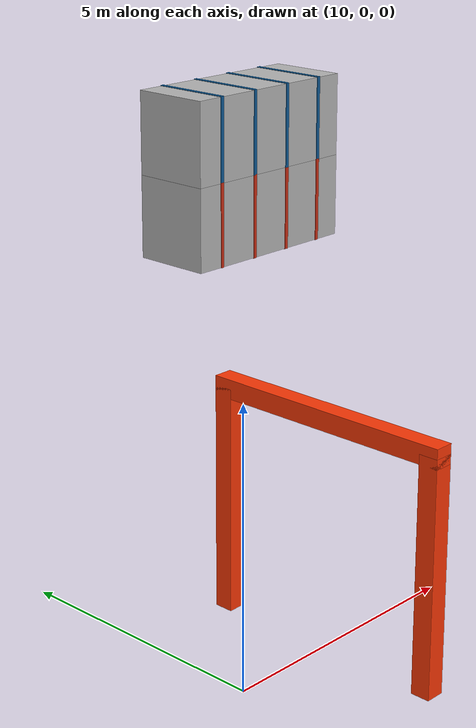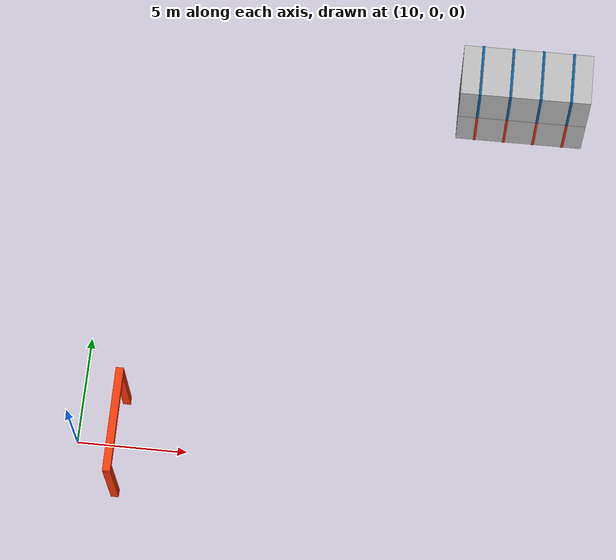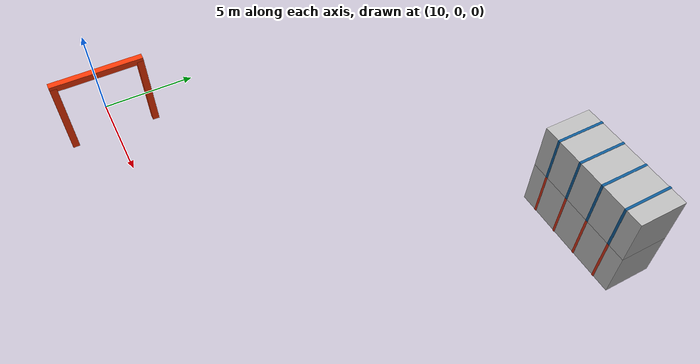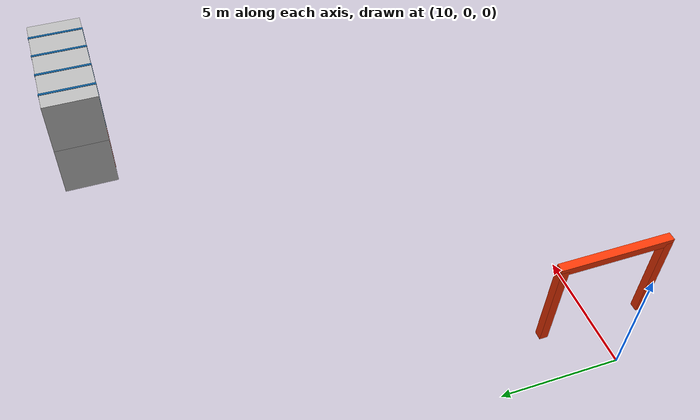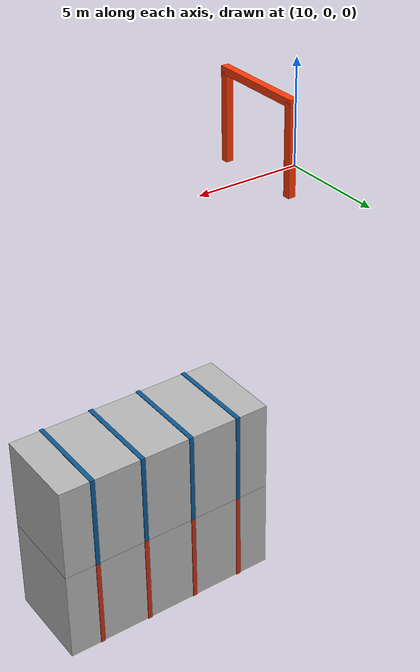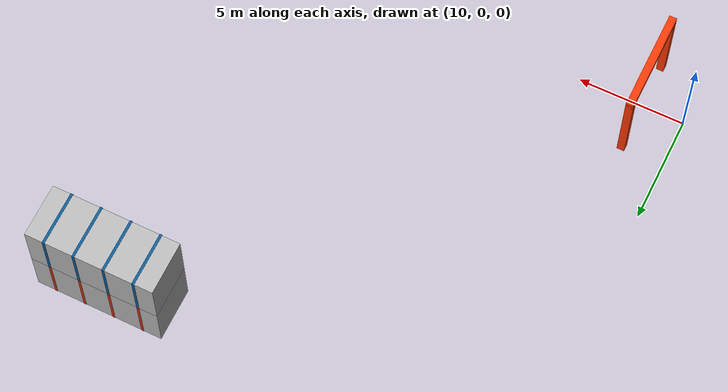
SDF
<sdf version="1.6">
 <world name="uav_complex_120m">
  <model name="gate_12m">
   <static>true</static>
   <link name="left_post">
    <pose>0 2.2 2.1 0 0 0</pose>
    <collision name="collision">
     <geometry><box><size>0.35 0.35 4.2</size></box></geometry>
     <laser_retro>100</laser_retro>
     <surface><friction><ode><mu>1.0</mu><mu2>1.0</mu2></ode></friction></surface>
    </collision>
    <visual name="visual">
     <geometry><box><size>0.35 0.35 4.2</size></box></geometry>
     <material>
      <ambient>1 0.22 0.025 1</ambient>
      <diffuse>1 0.22 0.025 1</diffuse>
      <specular>0.08 0.08 0.08 1</specular>
     </material>
    </visual>
   </link>
   <link name="right_post">
    <pose>0 -2.2 2.1 0 0 0</pose>
    <collision name="collision">
     <geometry><box><size>0.35 0.35 4.2</size></box></geometry>
     <laser_retro>100</laser_retro>
     <surface><friction><ode><mu>1.0</mu><mu2>1.0</mu2></ode></friction></surface>
    </collision>
    <visual name="visual">
     <geometry><box><size>0.35 0.35 4.2</size></box></geometry>
     <material>
      <ambient>1 0.22 0.025 1</ambient>
      <diffuse>1 0.22 0.025 1</diffuse>
      <specular>0.08 0.08 0.08 1</specular>
     </material>
    </visual>
   </link>
   <link name="top_beam">
    <pose>0 0 4.2 0 0 0</pose>
    <collision name="collision">
     <geometry><box><size>0.35 4.75 0.35</size></box></geometry>
     <laser_retro>100</laser_retro>
     <surface><friction><ode><mu>1.0</mu><mu2>1.0</mu2></ode></friction></surface>
    </collision>
    <visual name="visual">
     <geometry><box><size>0.35 4.75 0.35</size></box></geometry>
     <material>
      <ambient>1 0.22 0.025 1</ambient>
      <diffuse>1 0.22 0.025 1</diffuse>
      <specular>0.08 0.08 0.08 1</specular>
     </material>
    </visual>
   </link>
   <pose>12 0 0 0 0 0</pose>
  </model>
  <model name="container_0">
   <static>true</static>
   <link name="container">
    <pose>0 0 1.275 0 0 0</pose>
    <collision name="collision">
     <geometry><box><size>6 2.45 2.55</size></box></geometry>
     <laser_retro>100</laser_retro>
     <surface><friction><ode><mu>1.0</mu><mu2>1.0</mu2></ode></friction></surface>
    </collision>
    <visual name="visual">
     <geometry><box><size>6 2.45 2.55</size></box></geometry>
     <material>
      <script>
       <uri>model://uav_complex_scene/materials/scripts</uri>
       <uri>model://uav_complex_scene/materials/textures</uri>
       <name>UAVComplex/RustedSteel</name>
      </script>
     </material>
    </visual>
   </link>
   <link name="rib_-2.1">
    <pose>-2.1 0 1.28 0 0 0</pose>
    <visual name="visual">
     <geometry><box><size>0.12 2.49 2.58</size></box></geometry>
     <material>
      <ambient>0.8 0.18 0.08 1</ambient>
      <diffuse>0.8 0.18 0.08 1</diffuse>
      <specular>0.08 0.08 0.08 1</specular>
     </material>
    </visual>
   </link>
   <link name="rib_-0.7">
    <pose>-0.7 0 1.28 0 0 0</pose>
    <visual name="visual">
     <geometry><box><size>0.12 2.49 2.58</size></box></geometry>
     <material>
      <ambient>0.8 0.18 0.08 1</ambient>
      <diffuse>0.8 0.18 0.08 1</diffuse>
      <specular>0.08 0.08 0.08 1</specular>
     </material>
    </visual>
   </link>
   <link name="rib_+0.7">
    <pose>0.7 0 1.28 0 0 0</pose>
    <visual name="visual">
     <geometry><box><size>0.12 2.49 2.58</size></box></geometry>
     <material>
      <ambient>0.8 0.18 0.08 1</ambient>
      <diffuse>0.8 0.18 0.08 1</diffuse>
      <specular>0.08 0.08 0.08 1</specular>
     </material>
    </visual>
   </link>
   <link name="rib_+2.1">
    <pose>2.1 0 1.28 0 0 0</pose>
    <visual name="visual">
     <geometry><box><size>0.12 2.49 2.58</size></box></geometry>
     <material>
      <ambient>0.8 0.18 0.08 1</ambient>
      <diffuse>0.8 0.18 0.08 1</diffuse>
      <specular>0.08 0.08 0.08 1</specular>
     </material>
    </visual>
   </link>
   <pose>29 18 0 0 0 0</pose>
  </model>
  <model name="container_9">
   <static>true</static>
   <link name="container">
    <pose>0 0 1.275 0 0 0</pose>
    <collision name="collision">
     <geometry><box><size>6 2.45 2.55</size></box></geometry>
     <laser_retro>100</laser_retro>
     <surface><friction><ode><mu>1.0</mu><mu2>1.0</mu2></ode></friction></surface>
    </collision>
    <visual name="visual">
     <geometry><box><size>6 2.45 2.55</size></box></geometry>
     <material>
      <script>
       <uri>model://uav_complex_scene/materials/scripts</uri>
       <uri>model://uav_complex_scene/materials/textures</uri>
       <name>UAVComplex/RustedSteel</name>
      </script>
     </material>
    </visual>
   </link>
   <link name="rib_-2.1">
    <pose>-2.1 0 1.28 0 0 0</pose>
    <visual name="visual">
     <geometry><box><size>0.12 2.49 2.58</size></box></geometry>
     <material>
      <ambient>0.05 0.35 0.58 1</ambient>
      <diffuse>0.05 0.35 0.58 1</diffuse>
      <specular>0.08 0.08 0.08 1</specular>
     </material>
    </visual>
   </link>
   <link name="rib_-0.7">
    <pose>-0.7 0 1.28 0 0 0</pose>
    <visual name="visual">
     <geometry><box><size>0.12 2.49 2.58</size></box></geometry>
     <material>
      <ambient>0.05 0.35 0.58 1</ambient>
      <diffuse>0.05 0.35 0.58 1</diffuse>
      <specular>0.08 0.08 0.08 1</specular>
     </material>
    </visual>
   </link>
   <link name="rib_+0.7">
    <pose>0.7 0 1.28 0 0 0</pose>
    <visual name="visual">
     <geometry><box><size>0.12 2.49 2.58</size></box></geometry>
     <material>
      <ambient>0.05 0.35 0.58 1</ambient>
      <diffuse>0.05 0.35 0.58 1</diffuse>
      <specular>0.08 0.08 0.08 1</specular>
     </material>
    </visual>
   </link>
   <link name="rib_+2.1">
    <pose>2.1 0 1.28 0 0 0</pose>
    <visual name="visual">
     <geometry><box><size>0.12 2.49 2.58</size></box></geometry>
     <material>
      <ambient>0.05 0.35 0.58 1</ambient>
      <diffuse>0.05 0.35 0.58 1</diffuse>
      <specular>0.08 0.08 0.08 1</specular>
     </material>
    </visual>
   </link>
   <pose>29 18 2.55 0 0 0</pose>
  </model>
 </world>
</sdf>
